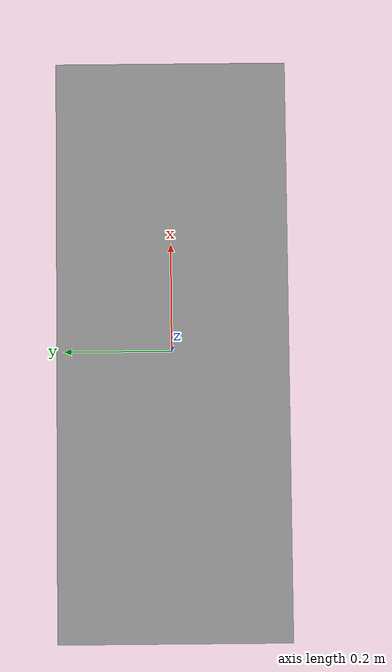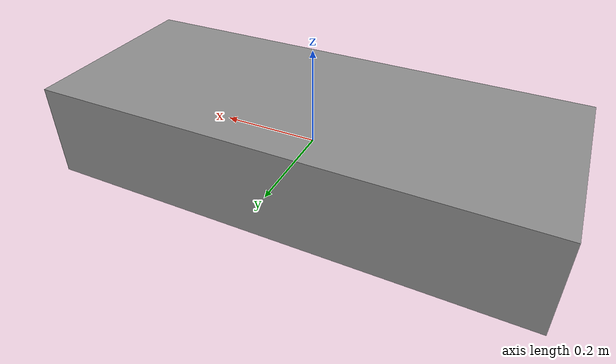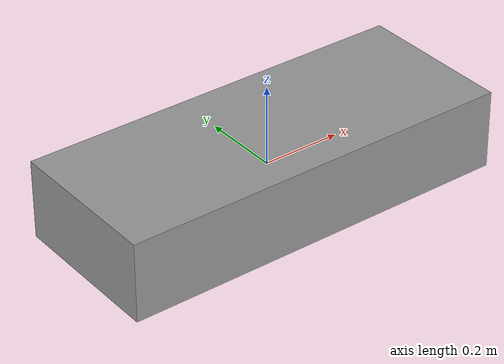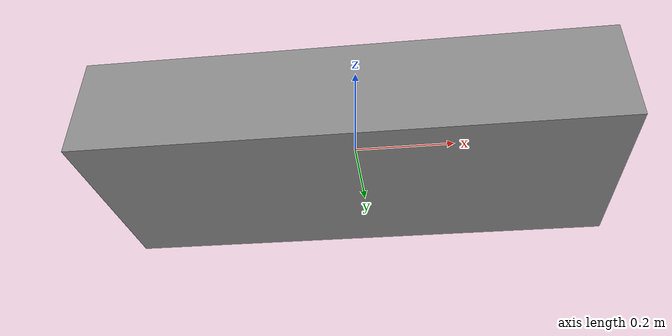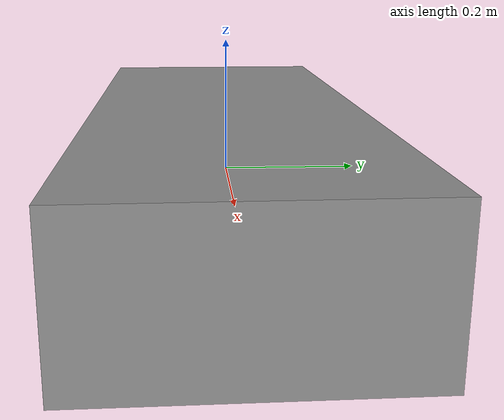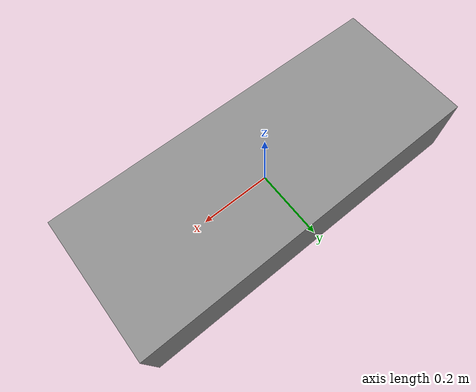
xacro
<?xml version="1.0"?>
<robot name="block" xmlns:xacro="http://www.ros.org/wiki/xacro">

  <!-- Masseløs root for å unngå KDL-advarsel -->
  <link name="DUMMY"/>

  <!-- Kropp med masse/inerti -->
  <link name="block_link">
    <inertial>
      <mass value="30.0"/>
      <origin xyz="0 0 -0.2"/>
      <!-- Boks 1x0.4x0.2 m, m=80 kg, CoM i origo:
           Ixx = 1/12*m*(0.4^2+0.2^2) = 1.3333
           Iyy = 1/12*m*(1.0^2+0.2^2) = 6.9333
           Izz = 1/12*m*(1.0^2+0.4^2) = 7.7333 -->
      <inertia ixx="1.3333" iyy="6.9333" izz="7.7333" ixy="0" ixz="0" iyz="0"/>
    </inertial>

    <visual>
      <origin xyz="0 0 0" rpy="0 0 0"/>
      <geometry><box size="1 0.4 0.2"/></geometry>
      <material name="gray"><color rgba="0.6 0.6 0.6 1.0"/></material>
    </visual>

    <collision>
      <origin xyz="0 0 0" rpy="0 0 0"/>
      <geometry><box size="1 0.4 0.2"/></geometry>
    </collision>
  </link>

  <!-- Root = DUMMY -> block_link -->
  <joint name="dummy_to_block" type="fixed">
    <parent link="DUMMY"/>
    <child  link="block_link"/>
    <origin xyz="0 0 0" rpy="0 0 0"/>
  </joint>

  <gazebo>
    <plugin name="buoyancy" filename="/home/rocotics/ros2_ws/install/buoyancy_plugin/lib/libbuoyancy_plugin.so">
      <fluid_density>1025</fluid_density>
      <surface_z>0.0</surface_z>
      <link name="DUMMY">
        <waterplane_area>0.4</waterplane_area>
        <height>0.3</height>
        <linear_damping>60.0</linear_damping>
        <angular_damping>15.0</angular_damping>
        <k_righting>50.0</k_righting>
        <cob>
          <x>0</x>
          <y>0</y>
          <z>-0.01</z>
        </cob>
      </link>
    </plugin>
  </gazebo>

</robot>
